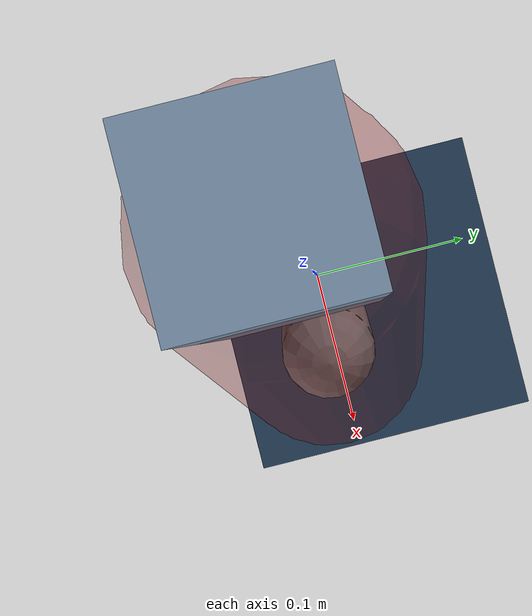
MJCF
<mujoco model="Hopper2D">
	<compiler inertiafromgeom="true" angle="radian" />
	<option timestep="0.001" integrator="implicit" cone="elliptic" solver="Newton" tolerance="1e-10" />

	<default>
		<geom contype="1" conaffinity="1" condim="3" friction="2 0.005 0.0001" solref="0.005 1" />
		<joint limited="true" damping="0.1" />
	</default>

	<asset>
		<texture name="skybox" type="skybox" builtin="gradient" rgb1=".4 .6 .8" rgb2="0 0 0" width="800" height="800" />
		<texture name="grid" type="2d" builtin="checker" rgb1=".1 .2 .3" rgb2=".2 .3 .4" width="300" height="300" mark="edge" markrgb=".2 .3 .4" />
		<material name="ground" texture="grid" texrepeat="1 1" texuniform="true" reflectance="0.1" />
		<material name="leg" rgba="0.5 0.6 0.7 1" />
	</asset>

	<worldbody>

		<geom name="floor" type="plane" size="5 5 0.25" material="ground" />

		<light directional="false" diffuse="0.8 0.8 0.8" specular="0.3 0.3 0.3" pos="0 0 2" dir="0 0 -1" />
		<light mode="targetbodycom" target="base" directional="false" diffuse="0.8 0.8 0.8" specular="0.3 0.3 0.3" pos="0 0 2" dir="0 0 -1" />

		<camera name="fixed" pos="0 -2 1" xyaxes="1 0 0 0 0 1" />
		<camera name="tracking" mode="trackcom" pos="0 -3 1" />

		<body name="root" pos="0 0 0.4758337848216922">
			<joint name="slide_x" type="slide" axis="1 0 0" range="-100 100" />
			<joint name="slide_z" type="slide" axis="0 0 1" range="0 10" />

			<body name="base" pos="0 0 0">
				<geom name="torso" type="box" size="0.03 0.03 0.1" mass="3.056" material="leg" />

				<body name="link1" pos="0 0 0" euler="0 1.4059085330111611 0">
					<joint type="hinge" axis="0 -1 0" pos="0 0 0" name="hinge1" limited="true" range="-3.14 3.14" stiffness="0" damping="0.1" />
					<geom name="thigh" type="capsule" fromto="0 0 0 0.2922319799732346 0 0" size="0.05" rgba="0.5 0 0 0.3" mass="0.9678263459277334" />

					<body name="link2" pos="0.2922319799732346 0 0" euler="0 0.4152587702931582 0">
						<joint type="hinge" axis="0 -1 0" pos="0 0 0" name="hinge2" limited="true" range="-3.14 3.14" stiffness="0" damping="0.1" />
						<geom name="shank" type="capsule" fromto="0 0 0 0.19360180484845763 0 0" size="0.025" mass="0.3954814438787661" />

					</body>
				</body>
			</body>
		</body>
	</worldbody>

	<actuator>
		<motor name="torque1" joint="hinge1" ctrlrange="-96.71249988968798 96.71249988968798" ctrllimited="true" gear="1" />
		<motor name="torque2" joint="hinge2" ctrlrange="-81.88423839370607 81.88423839370607" ctrllimited="true" gear="1" />
	</actuator>
</mujoco>
